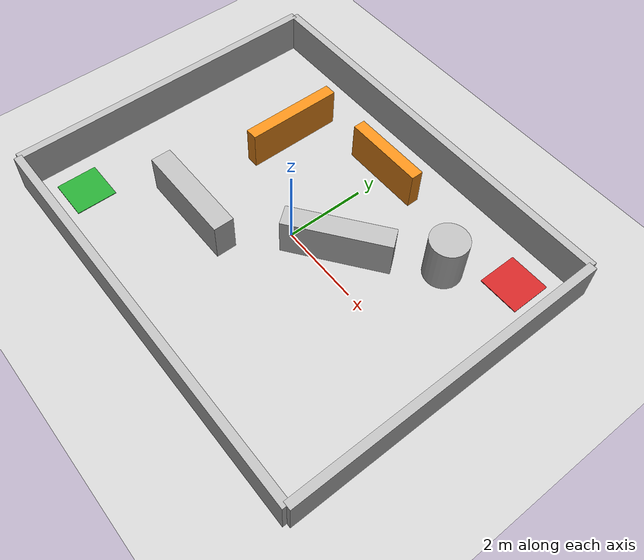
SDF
<?xml version="1.0"?>

<sdf version="1.6">

    <world name="autonomy_world">

        <spherical_coordinates>

            <surface_model>
                EARTH_WGS84
            </surface_model>

            <latitude_deg>
                55.0
            </latitude_deg>

            <longitude_deg>
                37.0
            </longitude_deg>

            <elevation>
                100.0
            </elevation>

            <heading_deg>
                0.0
            </heading_deg>

        </spherical_coordinates>

        <physics name="ode_physics" type="ode">
            <max_step_size>0.001</max_step_size>
            <real_time_update_rate>1000</real_time_update_rate>
        </physics>

        <gravity>0 0 -9.81</gravity>

        <include>
            <uri>model://ground_plane</uri>
        </include>

        <include>
            <uri>model://sun</uri>
        </include>

        <!-- START: A = (-4, -3) -->
        <model name="start_zone">
            <static>true</static>

            <pose>-4 -3 0.01 0 0 0</pose>

            <link name="link">
                <visual name="visual">
                    <geometry>
                        <box>
                            <size>1 1 0.02</size>
                        </box>
                    </geometry>

                    <material>
                        <script>
                            <uri>file://media/materials/scripts/gazebo.material</uri>
                            <name>Gazebo/Green</name>
                        </script>
                    </material>
                </visual>
            </link>
        </model>

        <!-- FINISH: B = (4, 3) -->
        <model name="finish_zone">
            <static>true</static>

            <pose>4 3 0.01 0 0 0</pose>

            <link name="link">
                <visual name="visual">
                    <geometry>
                        <box>
                            <size>1 1 0.02</size>
                        </box>
                    </geometry>

                    <material>
                        <script>
                            <uri>file://media/materials/scripts/gazebo.material</uri>
                            <name>Gazebo/Red</name>
                        </script>
                    </material>
                </visual>
            </link>
        </model>

        <!-- Obstacle 1 -->
        <model name="obstacle_1">
            <static>true</static>

            <pose>-1.8 -1.4 0.5 0 0 0</pose>

            <link name="link">

                <collision name="collision">
                    <geometry>
                        <box>
                            <size>2.5 0.5 1.0</size>
                        </box>
                    </geometry>
                </collision>

                <visual name="visual">
                    <geometry>
                        <box>
                            <size>2.5 0.5 1.0</size>
                        </box>
                    </geometry>
                </visual>

            </link>
        </model>

        <!-- Obstacle 2 -->
        <model name="obstacle_2">
            <static>true</static>

            <pose>1.0 0.5 0.5 0 0 0.65</pose>

            <link name="link">

                <collision name="collision">
                    <geometry>
                        <box>
                            <size>2.5 0.5 1.0</size>
                        </box>
                    </geometry>
                </collision>

                <visual name="visual">
                    <geometry>
                        <box>
                            <size>2.5 0.5 1.0</size>
                        </box>
                    </geometry>
                </visual>

            </link>
        </model>

        <!-- Obstacle 3 -->
        <model name="obstacle_3">
            <static>true</static>

            <pose>2.8 2.0 0.6 0 0 0</pose>

            <link name="link">

                <collision name="collision">
                    <geometry>
                        <cylinder>
                            <radius>0.45</radius>
                            <length>1.2</length>
                        </cylinder>
                    </geometry>
                </collision>

                <visual name="visual">
                    <geometry>
                        <cylinder>
                            <radius>0.45</radius>
                            <length>1.2</length>
                        </cylinder>
                    </geometry>
                </visual>

            </link>
        </model>
        <!-- Outer walls for SLAM                                      -->

        <model name="wall_north">
            <static>true</static>

            <pose>0 4.0 0.5 0 0 0</pose>

            <link name="link">

                <collision name="collision">
                    <geometry>
                        <box>
                            <size>10.0 0.20 1.0</size>
                        </box>
                    </geometry>
                </collision>

                <visual name="visual">
                    <geometry>
                        <box>
                            <size>10.0 0.20 1.0</size>
                        </box>
                    </geometry>
                </visual>

            </link>
        </model>

        <model name="wall_south">
            <static>true</static>

            <pose>0 -4.0 0.5 0 0 0</pose>

            <link name="link">

                <collision name="collision">
                    <geometry>
                        <box>
                            <size>10.0 0.20 1.0</size>
                        </box>
                    </geometry>
                </collision>

                <visual name="visual">
                    <geometry>
                        <box>
                            <size>10.0 0.20 1.0</size>
                        </box>
                    </geometry>
                </visual>

            </link>
        </model>

        <model name="wall_east">
            <static>true</static>

            <pose>5.0 0 0.5 0 0 0</pose>

            <link name="link">

                <collision name="collision">
                    <geometry>
                        <box>
                            <size>0.20 8.0 1.0</size>
                        </box>
                    </geometry>
                </collision>

                <visual name="visual">
                    <geometry>
                        <box>
                            <size>0.20 8.0 1.0</size>
                        </box>
                    </geometry>
                </visual>

            </link>
        </model>

        <model name="wall_west">
            <static>true</static>

            <pose>-5.0 0 0.5 0 0 0</pose>

            <link name="link">

                <collision name="collision">
                    <geometry>
                        <box>
                            <size>0.20 8.0 1.0</size>
                        </box>
                    </geometry>
                </collision>

                <visual name="visual">
                    <geometry>
                        <box>
                            <size>0.20 8.0 1.0</size>
                        </box>
                    </geometry>
                </visual>

            </link>
        </model>

        <model name="maze_baffle_west">
            <static>true</static>
            <pose>-2.3 1.8 0.5 0 0 0</pose>
            <link name="link">
                <collision name="collision"><geometry><box><size>0.3 2.4 1</size></box></geometry></collision>
                <visual name="visual">
                    <geometry><box><size>0.3 2.4 1</size></box></geometry>
                    <material><script><uri>file://media/materials/scripts/gazebo.material</uri><name>Gazebo/Orange</name></script></material>
                </visual>
            </link>
        </model>

        <model name="maze_baffle_north">
            <static>true</static>
            <pose>0 2.8 0.5 0 0 0</pose>
            <link name="link">
                <collision name="collision"><geometry><box><size>2 0.3 1</size></box></geometry></collision>
                <visual name="visual">
                    <geometry><box><size>2 0.3 1</size></box></geometry>
                    <material><script><uri>file://media/materials/scripts/gazebo.material</uri><name>Gazebo/Orange</name></script></material>
                </visual>
            </link>
        </model>
        <gui>
            <camera name="overview">
                <pose>0 -8 11 0 0.94 1.5708</pose>
            </camera>
        </gui>
    </world>

</sdf>
